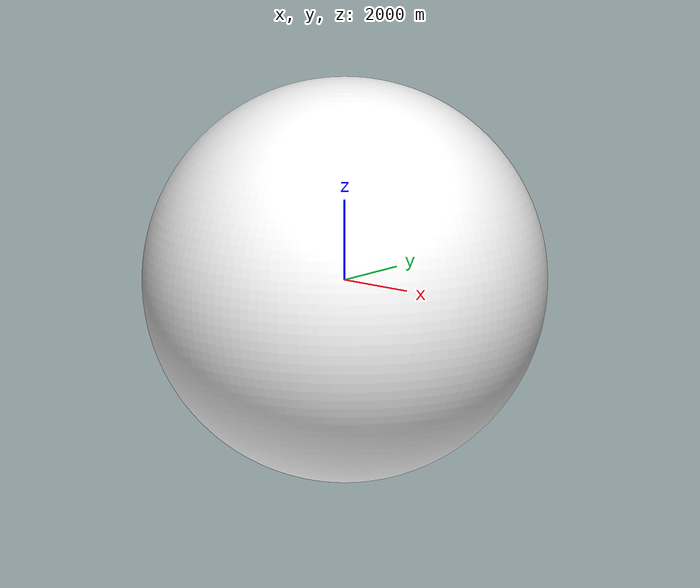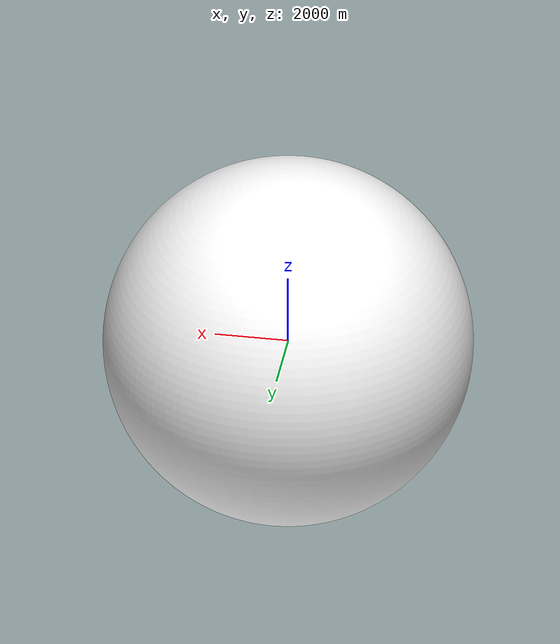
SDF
<?xml version="1.0"?>
<sdf version="1.6">
  <world name="thermal_camera">
    <physics name="1ms" type="ignored">
      <max_step_size>0.001</max_step_size>
      <real_time_factor>1.0</real_time_factor>
    </physics>
    <plugin
      filename="ignition-gazebo-physics-system"
      name="ignition::gazebo::systems::Physics">
    </plugin>
    <plugin
      filename="ignition-gazebo-sensors-system"
      name="ignition::gazebo::systems::Sensors">
      <render_engine>ogre2</render_engine>
    </plugin>
    <plugin
      filename="ignition-gazebo-scene-broadcaster-system"
      name="ignition::gazebo::systems::SceneBroadcaster">
    </plugin>
    <plugin
      filename="ignition-gazebo-user-commands-system"
      name="ignition::gazebo::systems::UserCommands">
    </plugin>

    <gui fullscreen="0">
      <!-- 3D scene plugin -->
      <plugin filename="GzScene3D" name="3D View">
        <ignition-gui>
          <title>3D View</title>
          <property type="bool" key="showTitleBar">false</property>
          <property type="string" key="state">docked</property>
        </ignition-gui>

        <engine>ogre2</engine>
        <scene>scene</scene>
        <ambient_light>0.4 0.4 0.4</ambient_light>
        <background_color>0.8 0.8 0.8</background_color>
        <camera_pose>-6 0 6 0 0.5 0</camera_pose>
      </plugin>

      <!-- Thermal Camera Visualization -->
      <plugin filename="ImageDisplay" name="Thermal Camera View">
        <ignition-gui>
          <title>Thermal Camera</title>
          <property type="string" key="state">floating</property>
          <property type="double" key="width">350</property>
          <property type="double" key="height">315</property>
        </ignition-gui>
        <topic>thermal_camera</topic>
        <topic_picker>false</topic_picker>
      </plugin>

      <!-- Depth Camera Visualization -->
    </gui>

    <light type="directional" name="sun">
      <cast_shadows>true</cast_shadows>
      <pose>0 0 10 0 0 0</pose>
      <diffuse>0.8 0.8 0.8 1</diffuse>
      <specular>0.2 0.2 0.2 1</specular>
      <attenuation>
        <range>1000</range>
        <constant>0.9</constant>
        <linear>0.01</linear>
        <quadratic>0.001</quadratic>
      </attenuation>
      <direction>-0.5 0.1 -0.9</direction>
    </light>

    <model name="sensor_mount">
      <pose>0 0 0 0 0 0</pose>
      <static>true</static>

      <!-- Mount Geometry -->
      <link name="mount_link">
        <inertial>
          <inertia>
            <ixx>1</ixx>
            <ixy>0</ixy>
            <ixz>0</ixz>
            <iyy>1</iyy>
            <iyz>0</iyz>
            <izz>1</izz>
          </inertia>
          <mass>1.0</mass>
        </inertial>
        <collision name="mount_collision">
          <geometry>
            <cylinder>
              <radius>0.5</radius>
              <length>1.0</length>
            </cylinder>
          </geometry>
        </collision>
        <visual name="mount_visual">
          <geometry>
            <cylinder>
              <radius>0.5</radius>
              <length>1.0</length>
            </cylinder>
          </geometry>
          <material>
            <ambient>0.3 0.3 0.8 1</ambient>
            <diffuse>0.3 0.3 0.8 1</diffuse>
            <specular>0.5 0.5 0.5 1</specular>
          </material>
        </visual>
      </link>

      <!-- Thermal Camera -->
      <link name="camera_link">
        <pose>0 0 0.75 0 0 3.14</pose>
        <collision name="camera_collision">
          <geometry>
            <box>
              <size>0.1 0.1 0.1</size>
            </box>
          </geometry>
        </collision>
        <visual name="camera_visual">
          <geometry>
            <box>
              <size>0.1 0.1 0.1</size>
            </box>
          </geometry>
        </visual>
        <sensor name="thermal_camera" type="thermal">
          <camera>
            <horizontal_fov>1.1</horizontal_fov>
            <image>
              <width>320</width>
              <height>256</height>
              <format>L16</format>
            </image>
            <clip>
              <near>0.1</near>
              <far>100</far>
            </clip>
          </camera>
          <always_on>1</always_on>
          <update_rate>30</update_rate>
          <visualize>true</visualize>
          <topic>thermal_camera</topic>
        </sensor>

        <!-- Depth Camera -->
        <sensor name="d435_depth" type="depth_camera">
          <always_on>1</always_on>
          <update_rate>30</update_rate>
          <visualize>1</visualize>
          <topic>/model/igt_one/depth_camera</topic>
          <camera name="d435">
            <horizontal_fov>1.1</horizontal_fov>
            <image>
              <width>320</width>
              <height>256</height>
              <format>RGB_INT8</format>
            </image>
            <clip>
              <near>0.1</near>
              <far>100</far>
            </clip>
            <noise>
              <type>gaussian</type>
              <mean>0</mean>
              <stddev>0.007</stddev>
            </noise>
          </camera>
        </sensor>
      </link>

      <!-- Fixed Joint to Attach Cameras to Mount -->
      <joint name="camera_to_mount" type="fixed">
        <parent>mount_link</parent>
        <child>camera_link</child>
      </joint>
    </model>

    <include>
      <name>sky</name>
      <uri>model://sky</uri>
    </include>
  </world>
</sdf>

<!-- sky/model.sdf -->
<sdf version="1.6">
  <model name="sky">
    <static>true</static>
    <link name="base_link">
      <visual name="Sky_visual">
        <geometry>
          <mesh>
            <uri>meshes/sky.dae</uri>
          </mesh>
        </geometry>
        <material>
          <diffuse>1.0 1.0 1.0</diffuse>
          <specular>1.0 1.0 1.0</specular>
          <pbr>
            <metal>
              <albedo_map>materials/textures/Sky.png</albedo_map>
              <emissive_map>materials/textures/Sky.png</emissive_map>
            </metal>
          </pbr>
        </material>
          <plugin
            filename="ignition-gazebo-thermal-system"
            name="ignition::gazebo::systems::Thermal">
            <heat_signature>materials/textures/sky_thermal.png</heat_signature>
            <max_temp>300</max_temp>
          </plugin>
      </visual>
    </link>
  </model>
</sdf>
